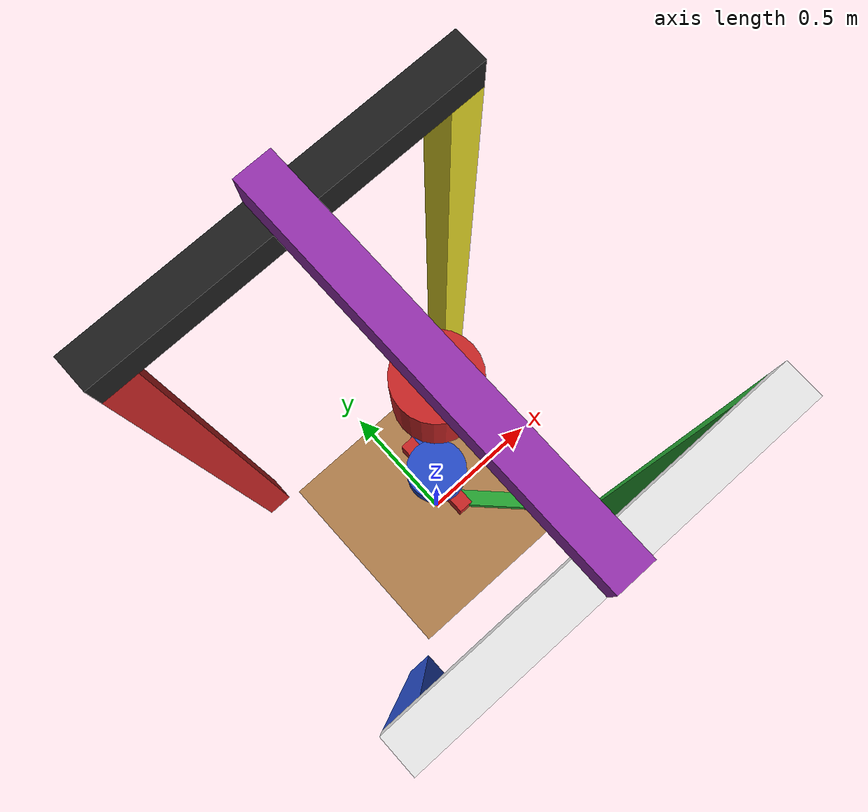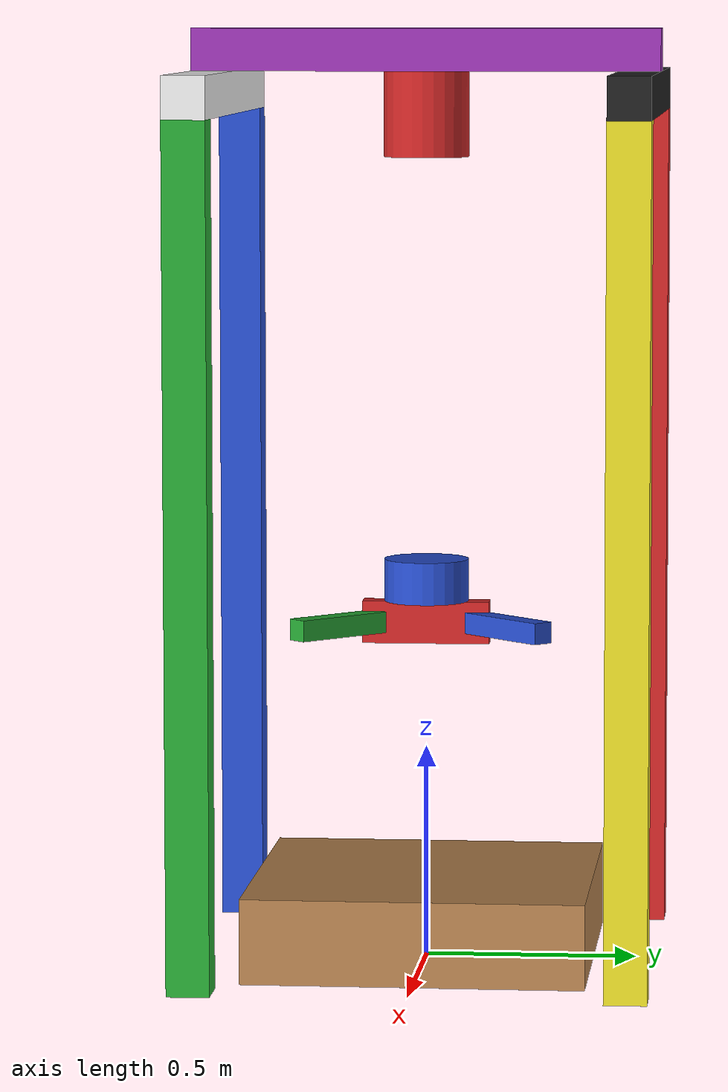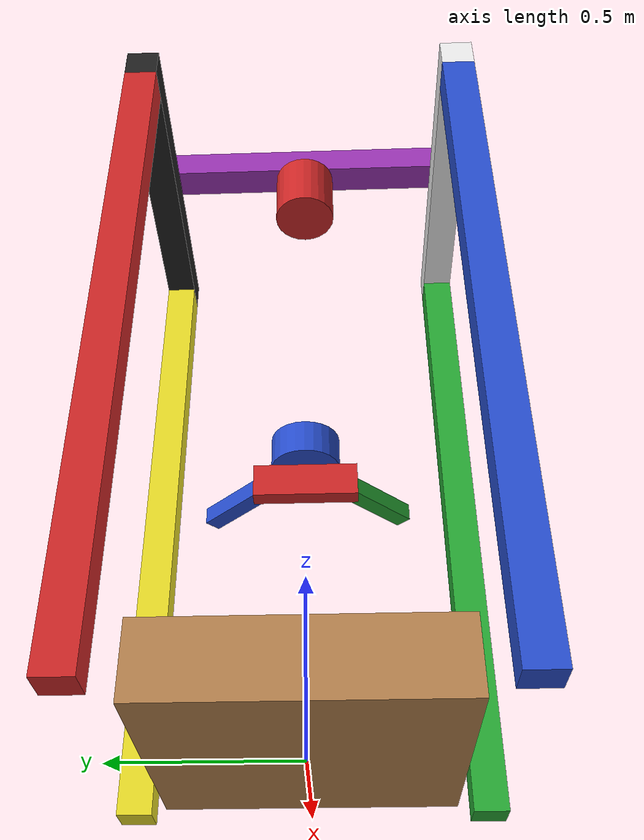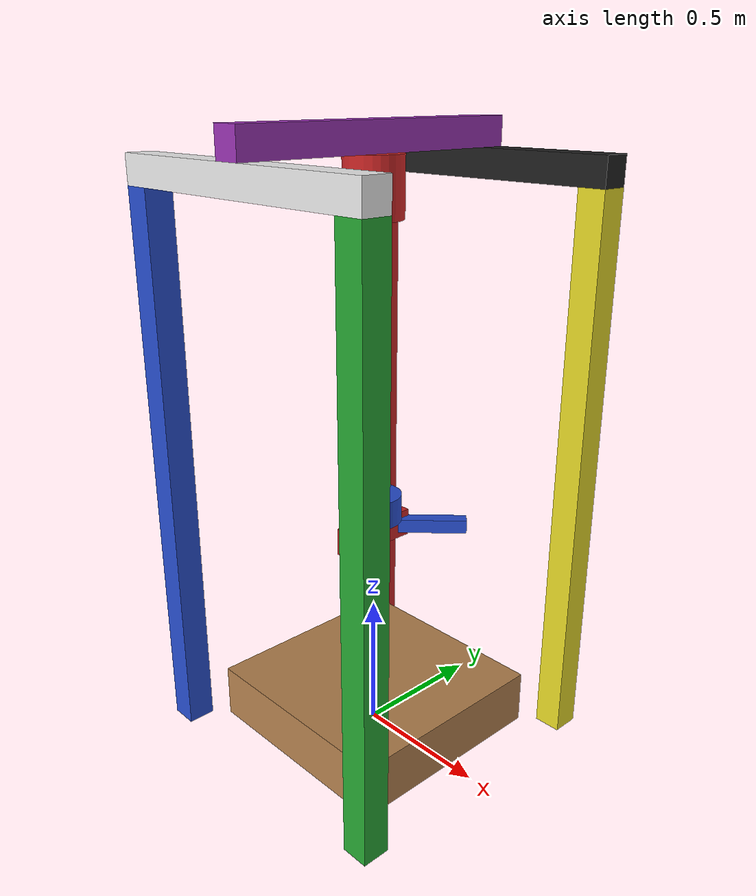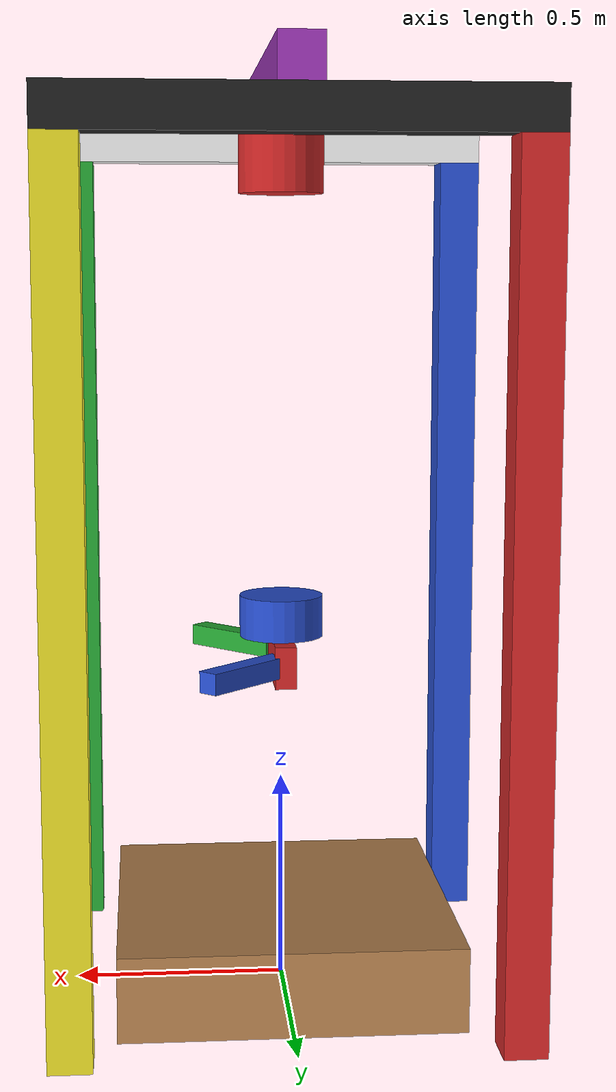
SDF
<?xml version='1.0'?>
<sdf version="1.4">
	<model name='portal_robot'>
		<!-- The workspace (e.g. table) of the portal robot -->
			<link name="portal_workspace">
				<pose>0 0 0.1 0 0 0</pose>
				<inertial>
					<mass>10.0</mass>
				</inertial>
				<collision name="collision">
					<geometry>
						<box>
							<size>0.8 0.8 0.2</size>
						</box>
					</geometry>
				</collision>
				<visual name="visual">
					<geometry>
						<box>
							<size>0.8 0.8 0.2</size>
						</box>
					</geometry>
          <material>
            <script>
              <uri>file://media/materials/scripts/gazebo.material</uri>
              <name>Gazebo/Wood</name>
            </script>
          </material>
				</visual>
			</link>

		<!-- The legs of the portal -->
			<link name="leg_left_bottom">
				<pose>-0.5 -0.5 1 0 0 0</pose>
				<inertial>
					<mass>1.0</mass>
					<inertia> <!-- interias are tricky to compute -->
						<ixx>0.083</ixx>       <!-- for a box: ixx = 0.083 * mass * (y*y + z*z) -->
						<ixy>0.0</ixy>         <!-- for a box: ixy = 0 -->
						<ixz>0.0</ixz>         <!-- for a box: ixz = 0 -->
						<iyy>0.083</iyy>       <!-- for a box: iyy = 0.083 * mass * (x*x + z*z) -->
						<iyz>0.0</iyz>         <!-- for a box: iyz = 0 -->
						<izz>0.083</izz>       <!-- for a box: izz = 0.083 * mass * (x*x + y*y) -->
					</inertia>
				</inertial>
				<collision name="collision">
					<geometry>
						<box>
							<size>0.1 0.1 2</size>
						</box>
					</geometry>
				</collision>
				<visual name="visual">
					<geometry>
						<box>
							<size>0.1 0.1 2</size>
						</box>
					</geometry>
          <material>
            <script>
              <uri>file://media/materials/scripts/gazebo.material</uri>
              <name>Gazebo/Blue</name>
            </script>
          </material>
				</visual>
			</link>

			<link name="leg_right_bottom">
				<pose>0.5 -0.5 1 0 0 0</pose>
				<inertial>
					<mass>1.0</mass>
					<inertia> <!-- interias are tricky to compute -->
						<ixx>0.083</ixx>       <!-- for a box: ixx = 0.083 * mass * (y*y + z*z) -->
						<ixy>0.0</ixy>         <!-- for a box: ixy = 0 -->
						<ixz>0.0</ixz>         <!-- for a box: ixz = 0 -->
						<iyy>0.083</iyy>       <!-- for a box: iyy = 0.083 * mass * (x*x + z*z) -->
						<iyz>0.0</iyz>         <!-- for a box: iyz = 0 -->
						<izz>0.083</izz>       <!-- for a box: izz = 0.083 * mass * (x*x + y*y) -->
					</inertia>
				</inertial>
				<collision name="collision">
					<geometry>
						<box>
							<size>0.1 0.1 2</size>
						</box>
					</geometry>
				</collision>
				<visual name="visual">
					<geometry>
						<box>
							<size>0.1 0.1 2</size>
						</box>
					</geometry>
          <material>
            <script>
              <uri>file://media/materials/scripts/gazebo.material</uri>
              <name>Gazebo/Green</name>
            </script>
          </material>
				</visual>
			</link>

			<link name="leg_right_top">
				<pose>0.5 0.5 1 0 0 0</pose>
				<inertial>
					<mass>1.0</mass>
					<inertia> <!-- interias are tricky to compute -->
						<ixx>0.083</ixx>       <!-- for a box: ixx = 0.083 * mass * (y*y + z*z) -->
						<ixy>0.0</ixy>         <!-- for a box: ixy = 0 -->
						<ixz>0.0</ixz>         <!-- for a box: ixz = 0 -->
						<iyy>0.083</iyy>       <!-- for a box: iyy = 0.083 * mass * (x*x + z*z) -->
						<iyz>0.0</iyz>         <!-- for a box: iyz = 0 -->
						<izz>0.083</izz>       <!-- for a box: izz = 0.083 * mass * (x*x + y*y) -->
					</inertia>
				</inertial>
				<collision name="collision">
					<geometry>
						<box>
							<size>0.1 0.1 2</size>
						</box>
					</geometry>
				</collision>
				<visual name="visual">
					<geometry>
						<box>
							<size>0.1 0.1 2</size>
						</box>
					</geometry>
          <material>
            <script>
              <uri>file://media/materials/scripts/gazebo.material</uri>
              <name>Gazebo/Yellow</name>
            </script>
          </material>
				</visual>
			</link>

			<link name="leg_left_top">
				<pose>-0.5 0.5 1 0 0 0</pose>
				<inertial>
					<mass>100.0</mass>
					<inertia> <!-- interias are tricky to compute -->
						<ixx>0.083</ixx>       <!-- for a box: ixx = 0.083 * mass * (y*y + z*z) -->
						<ixy>0.0</ixy>         <!-- for a box: ixy = 0 -->
						<ixz>0.0</ixz>         <!-- for a box: ixz = 0 -->
						<iyy>0.083</iyy>       <!-- for a box: iyy = 0.083 * mass * (x*x + z*z) -->
						<iyz>0.0</iyz>         <!-- for a box: iyz = 0 -->
						<izz>0.083</izz>       <!-- for a box: izz = 0.083 * mass * (x*x + y*y) -->
					</inertia>
				</inertial>
				<collision name="collision">
					<geometry>
						<box>
							<size>0.1 0.1 2</size>
						</box>
					</geometry>
				</collision>
				<visual name="visual">
					<geometry>
						<box>
							<size>0.1 0.1 2</size>
						</box>
					</geometry>
          <material>
            <script>
              <uri>file://media/materials/scripts/gazebo.material</uri>
              <name>Gazebo/Red</name>
            </script>
          </material>
				</visual>
			</link>

			<!-- Links Portal top structures-->

			<!-- Connection from left top to right top  -->
			<link name="top_leg_lt_rt">
				<pose>0 0.5 2.05 0 0 0</pose>
				<inertial>
					<mass>1</mass>
					<inertia> <!-- interias are tricky to compute -->
						<ixx>0.083</ixx>       <!-- for a box: ixx = 0.083 * mass * (y*y + z*z) -->
						<ixy>0.0</ixy>         <!-- for a box: ixy = 0 -->
						<ixz>0.0</ixz>         <!-- for a box: ixz = 0 -->
						<iyy>0.083</iyy>       <!-- for a box: iyy = 0.083 * mass * (x*x + z*z) -->
						<iyz>0.0</iyz>         <!-- for a box: iyz = 0 -->
						<izz>0.083</izz>       <!-- for a box: izz = 0.083 * mass * (x*x + y*y) -->
					</inertia>
				</inertial>
				<collision name="collision">
					<geometry>
						<box>
							<size>1.1 0.1 0.1</size>
						</box>
					</geometry>
				</collision>
				<visual name="visual">
					<geometry>
						<box>
							<size>1.1 0.1 0.1</size>
						</box>
					</geometry>
          <material>
            <script>
              <uri>file://media/materials/scripts/gazebo.material</uri>
              <name>Gazebo/Black</name>
            </script>
          </material>
				</visual>
			</link>

			<!-- Connection from left bottom to right bottom  -->
			<link name="bottom_leg_lt_rt">
				<pose>0 -0.5 2.05 0 0 0</pose>
				<inertial>
					<mass>1</mass>
					<inertia> <!-- interias are tricky to compute -->
						<ixx>0.083</ixx>       <!-- for a box: ixx = 0.083 * mass * (y*y + z*z) -->
						<ixy>0.0</ixy>         <!-- for a box: ixy = 0 -->
						<ixz>0.0</ixz>         <!-- for a box: ixz = 0 -->
						<iyy>0.083</iyy>       <!-- for a box: iyy = 0.083 * mass * (x*x + z*z) -->
						<iyz>0.0</iyz>         <!-- for a box: iyz = 0 -->
						<izz>0.083</izz>       <!-- for a box: izz = 0.083 * mass * (x*x + y*y) -->
					</inertia>
				</inertial>
				<collision name="collision">
					<geometry>
						<box>
							<size>1.1 0.1 0.1</size>
						</box>
					</geometry>
				</collision>
				<visual name="visual">
					<geometry>
						<box>
							<size>1.1 0.1 0.1</size>
						</box>
					</geometry>
          <material>
            <script>
              <uri>file://media/materials/scripts/gazebo.material</uri>
              <name>Gazebo/White</name>
            </script>
          </material>
				</visual>
			</link>

			<!-- "Rail" for the portal_mover  -->
			<link name="portal_mover_rail">
				<pose>0 0 2.15 0 0 0</pose>
				<inertial>
					<mass>0.1</mass>
					<inertia> <!-- interias are tricky to compute -->
						<ixx>0.083</ixx>       <!-- for a box: ixx = 0.083 * mass * (y*y + z*z) -->
						<ixy>0.0</ixy>         <!-- for a box: ixy = 0 -->
						<ixz>0.0</ixz>         <!-- for a box: ixz = 0 -->
						<iyy>0.083</iyy>       <!-- for a box: iyy = 0.083 * mass * (x*x + z*z) -->
						<iyz>0.0</iyz>         <!-- for a box: iyz = 0 -->
						<izz>0.083</izz>       <!-- for a box: izz = 0.083 * mass * (x*x + y*y) -->
					</inertia>
				</inertial>
				<collision name="collision">
					<geometry>
						<box>
							<size>0.1 1.1 0.1</size>
						</box>
					</geometry>
				</collision>
				<visual name="visual">
					<geometry>
						<box>
							<size>0.1 1.1 0.1</size>
						</box>
					</geometry>
          <material>
            <script>
              <uri>file://media/materials/scripts/gazebo.material</uri>
              <name>Gazebo/Purple</name>
            </script>
          </material>
				</visual>
			</link>

      <link name='portal_mover'>
				<pose>0 0 2 0 -0 0</pose>
        <inertial>
          <mass>1</mass>
          <inertia>
            <ixx>1</ixx>
            <ixy>0</ixy>
            <ixz>0</ixz>
            <iyy>1</iyy>
            <iyz>0</iyz>
            <izz>1</izz>
          </inertia>
        </inertial>
        <collision name='collision'>
          <geometry>
            <cylinder>
              <radius>0.1</radius>
              <length>0.2</length>
            </cylinder>
          </geometry>
          <max_contacts>10</max_contacts>
          <surface>
            <bounce/>
            <friction>
              <ode/>
            </friction>
            <contact>
              <ode/>
            </contact>
          </surface>
        </collision>
        <visual name='visual'>
          <geometry>
            <cylinder>
              <radius>0.1</radius>
              <length>0.2</length>
            </cylinder>
          </geometry>
          <material>
            <script>
              <uri>file://media/materials/scripts/gazebo.material</uri>
              <name>Gazebo/Red</name>
            </script>
          </material>
        </visual>
        <velocity_decay>
          <linear>0</linear>
          <angular>0</angular>
        </velocity_decay>
        <self_collide>0</self_collide>
        <kinematic>0</kinematic>
        <gravity>1</gravity>
			</link>

      <link name='endeffector_mount'>
				<pose>0 0 0.9 0 -0 0</pose>
        <inertial>
          <mass>1</mass>
          <inertia>
            <ixx>1</ixx>
            <ixy>0</ixy>
            <ixz>0</ixz>
            <iyy>1</iyy>
            <iyz>0</iyz>
            <izz>1</izz>
          </inertia>
        </inertial>
        <collision name='collision'>
          <geometry>
            <cylinder>
              <radius>0.1</radius>
              <length>0.1</length>
            </cylinder>
          </geometry>
          <max_contacts>10</max_contacts>
          <surface>
            <bounce/>
            <friction>
              <ode/>
            </friction>
            <contact>
              <ode/>
            </contact>
          </surface>
        </collision>
        <visual name='visual'>
          <geometry>
            <cylinder>
              <radius>0.1</radius>
              <length>0.1</length>
            </cylinder>
          </geometry>
          <material>
            <script>
              <uri>file://media/materials/scripts/gazebo.material</uri>
              <name>Gazebo/Blue</name>
            </script>
          </material>
        </visual>
        <velocity_decay>
          <linear>0</linear>
          <angular>0</angular>
        </velocity_decay>
        <self_collide>1</self_collide>
        <kinematic>0</kinematic>
        <gravity>1</gravity>
			</link>

			<!--- GRIPPER LINKS -->
					<link name="palm">
            <pose>0.0 0.0 0.80 0 0 0</pose>
            <inertial>
                <inertia>
                    <ixx>0.01</ixx>
                    <ixy>0</ixy>
                    <ixz>0</ixz>
                    <iyy>0.01</iyy>
                    <iyz>0</iyz>
                    <izz>0.01</izz>
                </inertia>
                <mass>0.5</mass>
            </inertial>
            <collision name="collision">
                <geometry>
                    <box>
                        <size>0.05 0.3 0.1</size>
                    </box>
                </geometry>
            </collision>
            <visual name="visual">
                <geometry>
                    <box>
                        <size>0.05 0.3 0.1</size>
                    </box>
                </geometry>
          <material>
            <script>
              <uri>file://media/materials/scripts/gazebo.material</uri>
           <name>Gazebo/Red</name>
            </script>
           </material>
            </visual>
        </link>
				<link name="left_finger">
					  <gravity>false</gravity>
            <pose>0.1 0.2 0.80 0 0 -0.78539</pose>
            <inertial>
                <inertia>
                    <ixx>0.01</ixx>
                    <ixy>0</ixy>
                    <ixz>0</ixz>
                    <iyy>0.01</iyy>
                    <iyz>0</iyz>
                    <izz>0.01</izz>
                </inertia>
                <mass>0.1</mass>
            </inertial>
            <collision name="collision">
                <geometry>
                    <box>
                        <size>0.05 0.25 0.05</size>
                    </box>
									</geometry>
									<surface>
										<friction>
											<ode>
												<mu>1</mu>
												<mu2>1</mu2>
											</ode>
										</friction>
									</surface>
            </collision>
            <visual name="visual">
                <geometry>
                    <box>
                        <size>0.05 0.25 0.05</size>
                    </box>
                </geometry>
                <material>
                  <script>
                    <uri>file://media/materials/scripts/gazebo.material</uri>
                    <name>Gazebo/Blue</name>
                  </script>
                </material>
            </visual>
        </link>
        <link name="right_finger">
            <pose>0.1 -0.2 0.80 0 0 .78539</pose>
            <inertial>
                <inertia>
                    <ixx>0.01</ixx>
                    <ixy>0</ixy>
                    <ixz>0</ixz>
                    <iyy>0.01</iyy>
                    <iyz>0</iyz>
                    <izz>0.01</izz>
                </inertia>
                <mass>0.1</mass>
            </inertial>
            <collision name="collision">
                <geometry>
                    <box>
                        <size>0.05 0.25 0.05</size>
                    </box>
                </geometry>
									<surface>
										<friction>
											<ode>
												<mu>1</mu>
												<mu2>1</mu2>
											</ode>
										</friction>
									</surface>
            </collision>
            <visual name="visual">
                <geometry>
                    <box>
                        <size>0.05 0.25 0.05</size>
                    </box>
                </geometry>
                <material>
                     <script>
                     <uri>file://media/materials/scripts/gazebo.material</uri>
                     <name>Gazebo/Green</name>
                     </script>
                </material>
            </visual>
        </link>

			<!-- JOINTS -->

			<joint type="prismatic" name="portal_mover_endeffector_mount">
				<child>endeffector_mount</child>
				<parent>portal_mover</parent>
				<axis>
					<xyz>0 0 1</xyz>
				</axis>
			</joint>

			<!-- fixed joints for the portal mover -->
			<joint type="prismatic" name="portal_mover_portal_mover_rail">
				<child>portal_mover</child>
				<parent>portal_mover_rail</parent>
				<axis>
					<xyz>0 1 0</xyz>
				</axis>
			</joint>

			<!-- fixed joints for the legs and the top structure -->
			<joint type="revolute" name="top_leg_lt_rt_right">
				<child>top_leg_lt_rt</child>
				<parent>leg_right_top</parent>
				<axis>
					<xyz>0 0 1</xyz>
					<limit>
						<upper>0</upper>
						<lower>0</lower>
					</limit>
				</axis>
			</joint>

			<joint type="revolute" name="top_leg_lt_rt_left">
				<child>top_leg_lt_rt</child>
				<parent>leg_left_top</parent>
				<axis>
					<xyz>0 0 1</xyz>
					<limit>
						<upper>0</upper>
						<lower>0</lower>
					</limit>
				</axis>
			</joint>

			<joint type="revolute" name="bottom_leg_lt_rt_right">
				<child>bottom_leg_lt_rt</child>
				<parent>leg_right_bottom</parent>
				<axis>
					<xyz>0 0 1</xyz>
					<limit>
						<upper>0</upper>
						<lower>0</lower>
					</limit>
				</axis>
			</joint>

			<joint type="revolute" name="bottom_leg_lt_rt_left">
				<child>bottom_leg_lt_rt</child>
				<parent>leg_left_bottom</parent>
				<axis>
					<xyz>0 0 1</xyz>
					<limit>
						<upper>0</upper>
						<lower>0</lower>
					</limit>
				</axis>
			</joint>
<!-- Mount the rail to the top structure with a "fixed joint"-->
			<joint type="revolute" name="bottom_leg_lt_rt_portal_mover_rail">
				<child>portal_mover_rail</child>
				<parent>bottom_leg_lt_rt</parent>
				<axis>
					<xyz>0 0 1</xyz>
					<limit>
						<upper>0</upper>
						<lower>0</lower>
					</limit>
				</axis>
			</joint>

			<joint type="revolute" name="top_leg_lt_rt_portal_mover_rail">
				<child>portal_mover_rail</child>
				<parent>top_leg_lt_rt</parent>
				<axis>
					<xyz>0 0 1</xyz>
					<limit>
						<upper>0</upper>
						<lower>0</lower>
					</limit>
				</axis>
			</joint>

<!-- Mount the gripper palm  to the endeffector mount with a "fixed joint"-->
			<joint type="revolute" name="endeffector_mount_palm">
				<child>palm</child>
				<parent>endeffector_mount</parent>
				<axis>
					<xyz>0 0 1</xyz>
					<limit>
						<upper>0</upper>
						<lower>0</lower>
					</limit>
				</axis>
			</joint>

			<joint name="palm_left_finger" type="revolute">
				<pose>0 -0.15 0.75 0 0 0</pose>
				<child>left_finger</child>
				<parent>palm</parent>
				<axis>
					<limit>
						<lower>-0.8</lower>
						<upper>0.8</upper>
					</limit>
					<xyz>0 0 1</xyz>
				</axis>
			</joint>

			<joint name="palm_right_finger" type="revolute">
				<pose>0 0.15 0.75 0 0 0</pose>
				<child>right_finger</child>
				<parent>palm</parent>
				<axis>
					<limit>
						<lower>-0.8</lower>
						<upper>0.8</upper>
					</limit>
					<xyz>0 0 1</xyz>
				</axis>
			</joint>

      <!-- Load the controller plugin to control the joints of the portal robot ! -->
  <plugin name="portal_controller" filename="libportal_controller.so"/>

</model>
</sdf>
